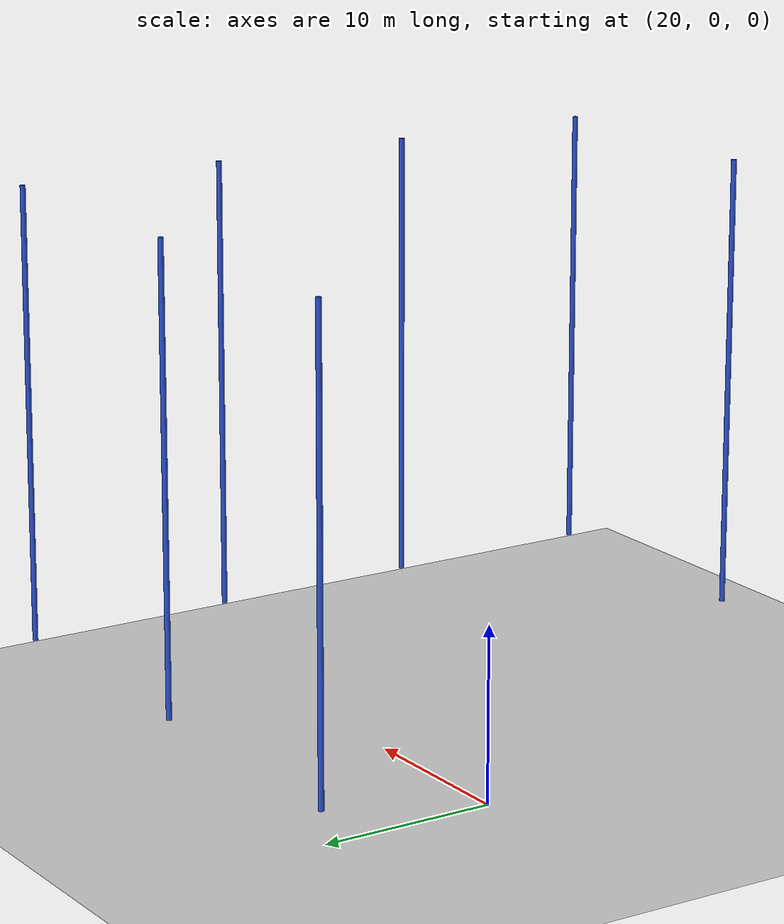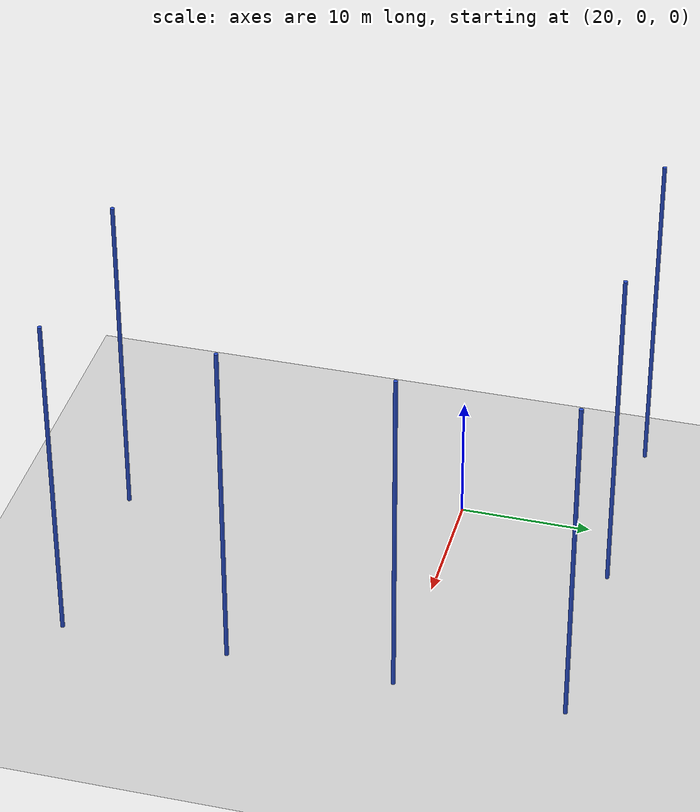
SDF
<sdf version="1.7">
 <world name="default">
  <model name="ground_plane">
   <static>1</static>
   <link name="link">
    <collision name="collision">
     <geometry><plane><normal>0 0 1</normal><size>100 100</size></plane></geometry>
     <surface>
      <contact><collide_bitmask>65535</collide_bitmask></contact>
      <friction><ode><mu>100</mu><mu2>50</mu2></ode></friction>
     </surface>
    </collision>
    <visual name="visual">
     <cast_shadows>0</cast_shadows>
     <geometry><plane><normal>0 0 1</normal><size>100 100</size></plane></geometry>
     <material>
      <script><uri>file://media/materials/scripts/gazebo.material</uri><name>Gazebo/Grey</name></script>
     </material>
    </visual>
   </link>
  </model>
  <model name="Blue_SOAR_Pole_clone_clone_clone_clone_clone_clone">
   <link name="link">
    <inertial>
     <mass>1.35636</mass>
     <inertia>
      <ixx>132.682</ixx>
      <ixy>0</ixy>
      <ixz>0</ixz>
      <iyy>132.682</iyy>
      <iyz>0</iyz>
      <izz>0.00672232</izz>
     </inertia>
    </inertial>
    <visual name="visual">
     <geometry><cylinder><radius>0.152</radius><length>25.908</length></cylinder></geometry>
     <material>
      <script><name>Gazebo/Blue</name><uri>file://media/materials/scripts/gazebo.material</uri></script>
      <shader type="pixel"><normal_map>__default__</normal_map></shader>
      <ambient>0 0 1 1</ambient>
      <diffuse>0 0 1 1</diffuse>
      <specular>0.1 0.1 0.1 1</specular>
      <emissive>0 0 0 1</emissive>
     </material>
    </visual>
    <collision name="collision">
     <geometry><cylinder><radius>0.099561</radius><length>34.2614</length></cylinder></geometry>
     <surface>
      <friction>
       <ode><mu>1</mu><mu2>1</mu2><fdir1>0 0 0</fdir1><slip1>0</slip1><slip2>0</slip2></ode>
       <torsional>
        <coefficient>1</coefficient>
        <patch_radius>0</patch_radius>
        <surface_radius>0</surface_radius>
        <use_patch_radius>1</use_patch_radius>
        <ode><slip>0</slip></ode>
       </torsional>
      </friction>
      <bounce><restitution_coefficient>0</restitution_coefficient><threshold>1e+06</threshold></bounce>
      <contact>
       <collide_without_contact>0</collide_without_contact>
       <collide_without_contact_bitmask>1</collide_without_contact_bitmask>
       <collide_bitmask>1</collide_bitmask>
       <ode>
        <soft_cfm>0</soft_cfm>
        <soft_erp>0.2</soft_erp>
        <kp>1e+13</kp>
        <kd>1</kd>
        <max_vel>0.01</max_vel>
        <min_depth>0</min_depth>
       </ode>
       <bullet>
        <split_impulse>1</split_impulse>
        <split_impulse_penetration_threshold>-0.01</split_impulse_penetration_threshold>
        <soft_cfm>0</soft_cfm>
        <soft_erp>0.2</soft_erp>
        <kp>1e+13</kp>
        <kd>1</kd>
       </bullet>
      </contact>
     </surface>
    </collision>
   </link>
   <static>0</static>
   <pose>15.2031 13.2 17.1307 0 1e-06 6.2e-05</pose>
  </model>
  <model name="Blue_SOAR_Pole_clone_clone_clone_clone_clone_clone_clone">
   <link name="link">
    <inertial>
     <mass>1.35636</mass>
     <inertia>
      <ixx>132.682</ixx>
      <ixy>0</ixy>
      <ixz>0</ixz>
      <iyy>132.682</iyy>
      <iyz>0</iyz>
      <izz>0.00672232</izz>
     </inertia>
    </inertial>
    <visual name="visual">
     <geometry><cylinder><radius>0.152</radius><length>25.908</length></cylinder></geometry>
     <material>
      <script><name>Gazebo/Blue</name><uri>file://media/materials/scripts/gazebo.material</uri></script>
      <shader type="pixel"><normal_map>__default__</normal_map></shader>
      <ambient>0 0 1 1</ambient>
      <diffuse>0 0 1 1</diffuse>
      <specular>0.1 0.1 0.1 1</specular>
      <emissive>0 0 0 1</emissive>
     </material>
    </visual>
    <collision name="collision">
     <geometry><cylinder><radius>0.099561</radius><length>34.2614</length></cylinder></geometry>
     <surface>
      <friction>
       <ode><mu>1</mu><mu2>1</mu2><fdir1>0 0 0</fdir1><slip1>0</slip1><slip2>0</slip2></ode>
       <torsional>
        <coefficient>1</coefficient>
        <patch_radius>0</patch_radius>
        <surface_radius>0</surface_radius>
        <use_patch_radius>1</use_patch_radius>
        <ode><slip>0</slip></ode>
       </torsional>
      </friction>
      <bounce><restitution_coefficient>0</restitution_coefficient><threshold>1e+06</threshold></bounce>
      <contact>
       <collide_without_contact>0</collide_without_contact>
       <collide_without_contact_bitmask>1</collide_without_contact_bitmask>
       <collide_bitmask>1</collide_bitmask>
       <ode>
        <soft_cfm>0</soft_cfm>
        <soft_erp>0.2</soft_erp>
        <kp>1e+13</kp>
        <kd>1</kd>
        <max_vel>0.01</max_vel>
        <min_depth>0</min_depth>
       </ode>
       <bullet>
        <split_impulse>1</split_impulse>
        <split_impulse_penetration_threshold>-0.01</split_impulse_penetration_threshold>
        <soft_cfm>0</soft_cfm>
        <soft_erp>0.2</soft_erp>
        <kp>1e+13</kp>
        <kd>1</kd>
       </bullet>
      </contact>
     </surface>
    </collision>
   </link>
   <static>0</static>
   <pose>30.4032 13.2001 17.1307 -3e-06 2e-06 5.9e-05</pose>
  </model>
  <model name="Blue_SOAR_Pole_clone_clone_clone_clone_clone_clone_clone_clone">
   <link name="link">
    <inertial>
     <mass>1.35636</mass>
     <inertia>
      <ixx>132.682</ixx>
      <ixy>0</ixy>
      <ixz>0</ixz>
      <iyy>132.682</iyy>
      <iyz>0</iyz>
      <izz>0.00672232</izz>
     </inertia>
    </inertial>
    <visual name="visual">
     <geometry><cylinder><radius>0.152</radius><length>25.908</length></cylinder></geometry>
     <material>
      <script><name>Gazebo/Blue</name><uri>file://media/materials/scripts/gazebo.material</uri></script>
      <shader type="pixel"><normal_map>__default__</normal_map></shader>
      <ambient>0 0 1 1</ambient>
      <diffuse>0 0 1 1</diffuse>
      <specular>0.1 0.1 0.1 1</specular>
      <emissive>0 0 0 1</emissive>
     </material>
    </visual>
    <collision name="collision">
     <geometry><cylinder><radius>0.099561</radius><length>34.2614</length></cylinder></geometry>
     <surface>
      <friction>
       <ode><mu>1</mu><mu2>1</mu2><fdir1>0 0 0</fdir1><slip1>0</slip1><slip2>0</slip2></ode>
       <torsional>
        <coefficient>1</coefficient>
        <patch_radius>0</patch_radius>
        <surface_radius>0</surface_radius>
        <use_patch_radius>1</use_patch_radius>
        <ode><slip>0</slip></ode>
       </torsional>
      </friction>
      <bounce><restitution_coefficient>0</restitution_coefficient><threshold>1e+06</threshold></bounce>
      <contact>
       <collide_without_contact>0</collide_without_contact>
       <collide_without_contact_bitmask>1</collide_without_contact_bitmask>
       <collide_bitmask>1</collide_bitmask>
       <ode>
        <soft_cfm>0</soft_cfm>
        <soft_erp>0.2</soft_erp>
        <kp>1e+13</kp>
        <kd>1</kd>
        <max_vel>0.01</max_vel>
        <min_depth>0</min_depth>
       </ode>
       <bullet>
        <split_impulse>1</split_impulse>
        <split_impulse_penetration_threshold>-0.01</split_impulse_penetration_threshold>
        <soft_cfm>0</soft_cfm>
        <soft_erp>0.2</soft_erp>
        <kp>1e+13</kp>
        <kd>1</kd>
       </bullet>
      </contact>
     </surface>
    </collision>
   </link>
   <static>0</static>
   <pose>45.6033 13.1999 17.1307 -1e-06 5e-06 0.000335</pose>
  </model>
  <model name="Blue_SOAR_Pole_clone_clone_clone_clone_clone_clone_clone_clone_clone">
   <link name="link">
    <inertial>
     <mass>1.35636</mass>
     <inertia>
      <ixx>132.682</ixx>
      <ixy>0</ixy>
      <ixz>0</ixz>
      <iyy>132.682</iyy>
      <iyz>0</iyz>
      <izz>0.00672232</izz>
     </inertia>
    </inertial>
    <visual name="visual">
     <geometry><cylinder><radius>0.152</radius><length>25.908</length></cylinder></geometry>
     <material>
      <script><name>Gazebo/Blue</name><uri>file://media/materials/scripts/gazebo.material</uri></script>
      <shader type="pixel"><normal_map>__default__</normal_map></shader>
      <ambient>0 0 1 1</ambient>
      <diffuse>0 0 1 1</diffuse>
      <specular>0.1 0.1 0.1 1</specular>
      <emissive>0 0 0 1</emissive>
     </material>
    </visual>
    <collision name="collision">
     <geometry><cylinder><radius>0.099561</radius><length>34.2614</length></cylinder></geometry>
     <surface>
      <friction>
       <ode><mu>1</mu><mu2>1</mu2><fdir1>0 0 0</fdir1><slip1>0</slip1><slip2>0</slip2></ode>
       <torsional>
        <coefficient>1</coefficient>
        <patch_radius>0</patch_radius>
        <surface_radius>0</surface_radius>
        <use_patch_radius>1</use_patch_radius>
        <ode><slip>0</slip></ode>
       </torsional>
      </friction>
      <bounce><restitution_coefficient>0</restitution_coefficient><threshold>1e+06</threshold></bounce>
      <contact>
       <collide_without_contact>0</collide_without_contact>
       <collide_without_contact_bitmask>1</collide_without_contact_bitmask>
       <collide_bitmask>1</collide_bitmask>
       <ode>
        <soft_cfm>0</soft_cfm>
        <soft_erp>0.2</soft_erp>
        <kp>1e+13</kp>
        <kd>1</kd>
        <max_vel>0.01</max_vel>
        <min_depth>0</min_depth>
       </ode>
       <bullet>
        <split_impulse>1</split_impulse>
        <split_impulse_penetration_threshold>-0.01</split_impulse_penetration_threshold>
        <soft_cfm>0</soft_cfm>
        <soft_erp>0.2</soft_erp>
        <kp>1e+13</kp>
        <kd>1</kd>
       </bullet>
      </contact>
     </surface>
    </collision>
   </link>
   <static>0</static>
   <pose>45.6033 0.966667 17.1307 -3e-06 -4e-06 0.000393</pose>
  </model>
  <model name="Blue_SOAR_Pole_clone_clone_clone_clone_clone_clone_clone_clone_clone_clone">
   <link name="link">
    <inertial>
     <mass>1.35636</mass>
     <inertia>
      <ixx>132.682</ixx>
      <ixy>0</ixy>
      <ixz>0</ixz>
      <iyy>132.682</iyy>
      <iyz>0</iyz>
      <izz>0.00672232</izz>
     </inertia>
    </inertial>
    <visual name="visual">
     <geometry><cylinder><radius>0.152</radius><length>25.908</length></cylinder></geometry>
     <material>
      <script><name>Gazebo/Blue</name><uri>file://media/materials/scripts/gazebo.material</uri></script>
      <shader type="pixel"><normal_map>__default__</normal_map></shader>
      <ambient>0 0 1 1</ambient>
      <diffuse>0 0 1 1</diffuse>
      <specular>0.1 0.1 0.1 1</specular>
      <emissive>0 0 0 1</emissive>
     </material>
    </visual>
    <collision name="collision">
     <geometry><cylinder><radius>0.099561</radius><length>34.2614</length></cylinder></geometry>
     <surface>
      <friction>
       <ode><mu>1</mu><mu2>1</mu2><fdir1>0 0 0</fdir1><slip1>0</slip1><slip2>0</slip2></ode>
       <torsional>
        <coefficient>1</coefficient>
        <patch_radius>0</patch_radius>
        <surface_radius>0</surface_radius>
        <use_patch_radius>1</use_patch_radius>
        <ode><slip>0</slip></ode>
       </torsional>
      </friction>
      <bounce><restitution_coefficient>0</restitution_coefficient><threshold>1e+06</threshold></bounce>
      <contact>
       <collide_without_contact>0</collide_without_contact>
       <collide_without_contact_bitmask>1</collide_without_contact_bitmask>
       <collide_bitmask>1</collide_bitmask>
       <ode>
        <soft_cfm>0</soft_cfm>
        <soft_erp>0.2</soft_erp>
        <kp>1e+13</kp>
        <kd>1</kd>
        <max_vel>0.01</max_vel>
        <min_depth>0</min_depth>
       </ode>
       <bullet>
        <split_impulse>1</split_impulse>
        <split_impulse_penetration_threshold>-0.01</split_impulse_penetration_threshold>
        <soft_cfm>0</soft_cfm>
        <soft_erp>0.2</soft_erp>
        <kp>1e+13</kp>
        <kd>1</kd>
       </bullet>
      </contact>
     </surface>
    </collision>
   </link>
   <static>0</static>
   <pose>45.598 -11.1733 17.1307 -1e-06 3e-06 -3.9e-05</pose>
  </model>
  <model name="Blue_SOAR_Pole_clone_clone_clone_clone_clone_clone_clone_clone_clone_clone_clone">
   <link name="link">
    <inertial>
     <mass>1.35636</mass>
     <inertia>
      <ixx>132.682</ixx>
      <ixy>0</ixy>
      <ixz>0</ixz>
      <iyy>132.682</iyy>
      <iyz>0</iyz>
      <izz>0.00672232</izz>
     </inertia>
    </inertial>
    <visual name="visual">
     <geometry><cylinder><radius>0.152</radius><length>25.908</length></cylinder></geometry>
     <material>
      <script><name>Gazebo/Blue</name><uri>file://media/materials/scripts/gazebo.material</uri></script>
      <shader type="pixel"><normal_map>__default__</normal_map></shader>
      <ambient>0 0 1 1</ambient>
      <diffuse>0 0 1 1</diffuse>
      <specular>0.1 0.1 0.1 1</specular>
      <emissive>0 0 0 1</emissive>
     </material>
    </visual>
    <collision name="collision">
     <geometry><cylinder><radius>0.099561</radius><length>34.2614</length></cylinder></geometry>
     <surface>
      <friction>
       <ode><mu>1</mu><mu2>1</mu2><fdir1>0 0 0</fdir1><slip1>0</slip1><slip2>0</slip2></ode>
       <torsional>
        <coefficient>1</coefficient>
        <patch_radius>0</patch_radius>
        <surface_radius>0</surface_radius>
        <use_patch_radius>1</use_patch_radius>
        <ode><slip>0</slip></ode>
       </torsional>
      </friction>
      <bounce><restitution_coefficient>0</restitution_coefficient><threshold>1e+06</threshold></bounce>
      <contact>
       <collide_without_contact>0</collide_without_contact>
       <collide_without_contact_bitmask>1</collide_without_contact_bitmask>
       <collide_bitmask>1</collide_bitmask>
       <ode>
        <soft_cfm>0</soft_cfm>
        <soft_erp>0.2</soft_erp>
        <kp>1e+13</kp>
        <kd>1</kd>
        <max_vel>0.01</max_vel>
        <min_depth>0</min_depth>
       </ode>
       <bullet>
        <split_impulse>1</split_impulse>
        <split_impulse_penetration_threshold>-0.01</split_impulse_penetration_threshold>
        <soft_cfm>0</soft_cfm>
        <soft_erp>0.2</soft_erp>
        <kp>1e+13</kp>
        <kd>1</kd>
       </bullet>
      </contact>
     </surface>
    </collision>
   </link>
   <static>0</static>
   <pose>45.6004 -23.3999 17.1307 -4e-06 2.1e-05 -9.7e-05</pose>
  </model>
  <model name="Blue_SOAR_Pole_clone_0">
   <link name="link">
    <inertial>
     <mass>1.35636</mass>
     <inertia>
      <ixx>132.682</ixx>
      <ixy>0</ixy>
      <ixz>0</ixz>
      <iyy>132.682</iyy>
      <iyz>0</iyz>
      <izz>0.00672232</izz>
     </inertia>
    </inertial>
    <visual name="visual">
     <geometry><cylinder><radius>0.152</radius><length>25.908</length></cylinder></geometry>
     <material>
      <script><name>Gazebo/Blue</name><uri>file://media/materials/scripts/gazebo.material</uri></script>
      <shader type="pixel"><normal_map>__default__</normal_map></shader>
      <ambient>0 0 1 1</ambient>
      <diffuse>0 0 1 1</diffuse>
      <specular>0.1 0.1 0.1 1</specular>
      <emissive>0 0 0 1</emissive>
     </material>
    </visual>
    <collision name="collision">
     <geometry><cylinder><radius>0.099561</radius><length>34.2614</length></cylinder></geometry>
     <surface>
      <friction>
       <ode><mu>1</mu><mu2>1</mu2><fdir1>0 0 0</fdir1><slip1>0</slip1><slip2>0</slip2></ode>
       <torsional>
        <coefficient>1</coefficient>
        <patch_radius>0</patch_radius>
        <surface_radius>0</surface_radius>
        <use_patch_radius>1</use_patch_radius>
        <ode><slip>0</slip></ode>
       </torsional>
      </friction>
      <bounce><restitution_coefficient>0</restitution_coefficient><threshold>1e+06</threshold></bounce>
      <contact>
       <collide_without_contact>0</collide_without_contact>
       <collide_without_contact_bitmask>1</collide_without_contact_bitmask>
       <collide_bitmask>1</collide_bitmask>
       <ode>
        <soft_cfm>0</soft_cfm>
        <soft_erp>0.2</soft_erp>
        <kp>1e+13</kp>
        <kd>1</kd>
        <max_vel>0.01</max_vel>
        <min_depth>0</min_depth>
       </ode>
       <bullet>
        <split_impulse>1</split_impulse>
        <split_impulse_penetration_threshold>-0.01</split_impulse_penetration_threshold>
        <soft_cfm>0</soft_cfm>
        <soft_erp>0.2</soft_erp>
        <kp>1e+13</kp>
        <kd>1</kd>
       </bullet>
      </contact>
     </surface>
    </collision>
   </link>
   <static>0</static>
   <pose>30.3999 -23.3999 17.1307 -4e-06 -6e-06 -0.002238</pose>
  </model>
 </world>
</sdf>
